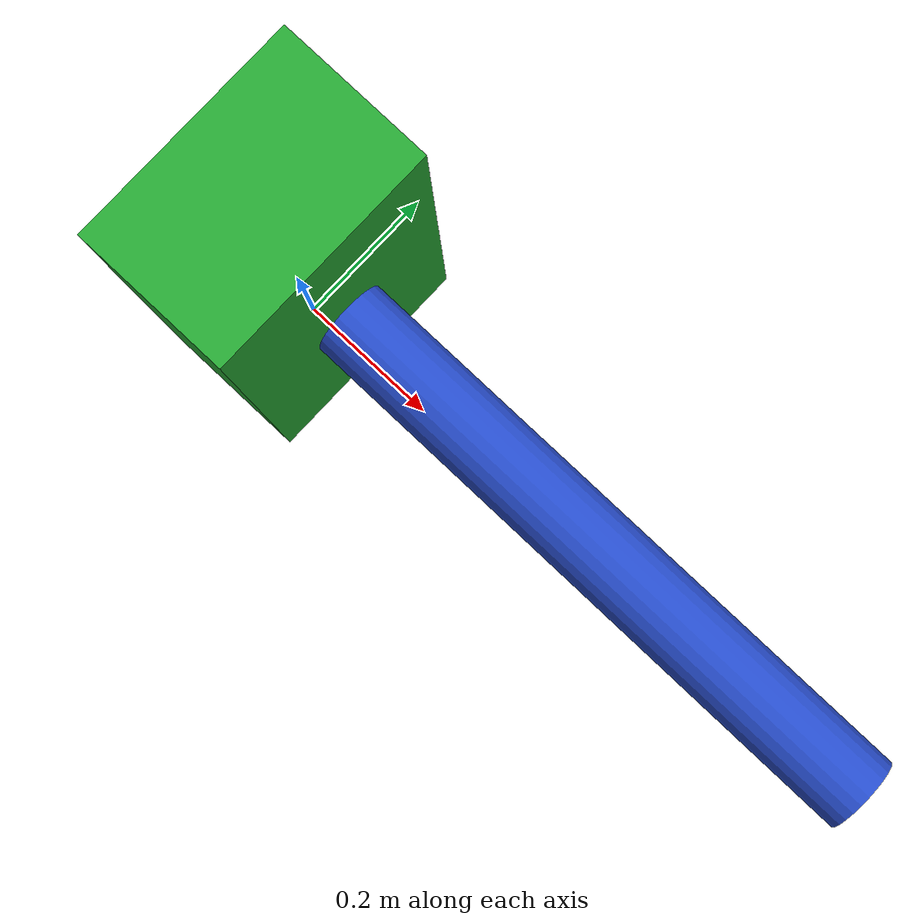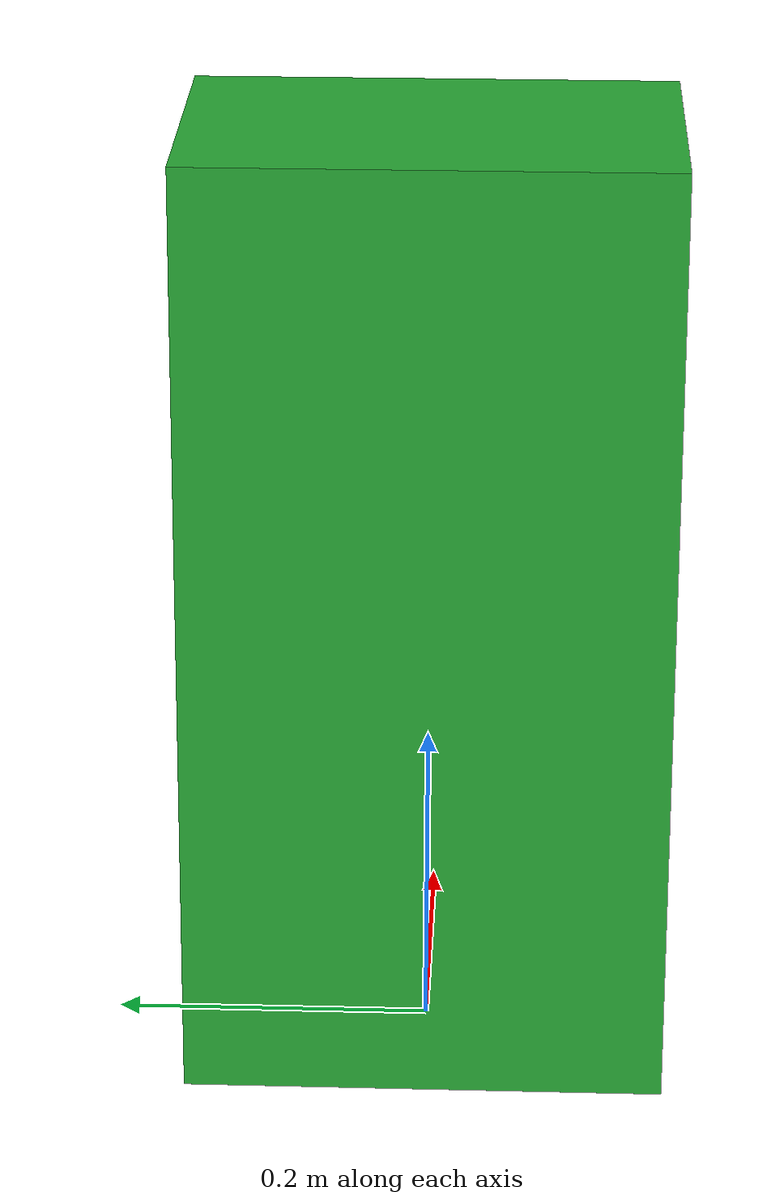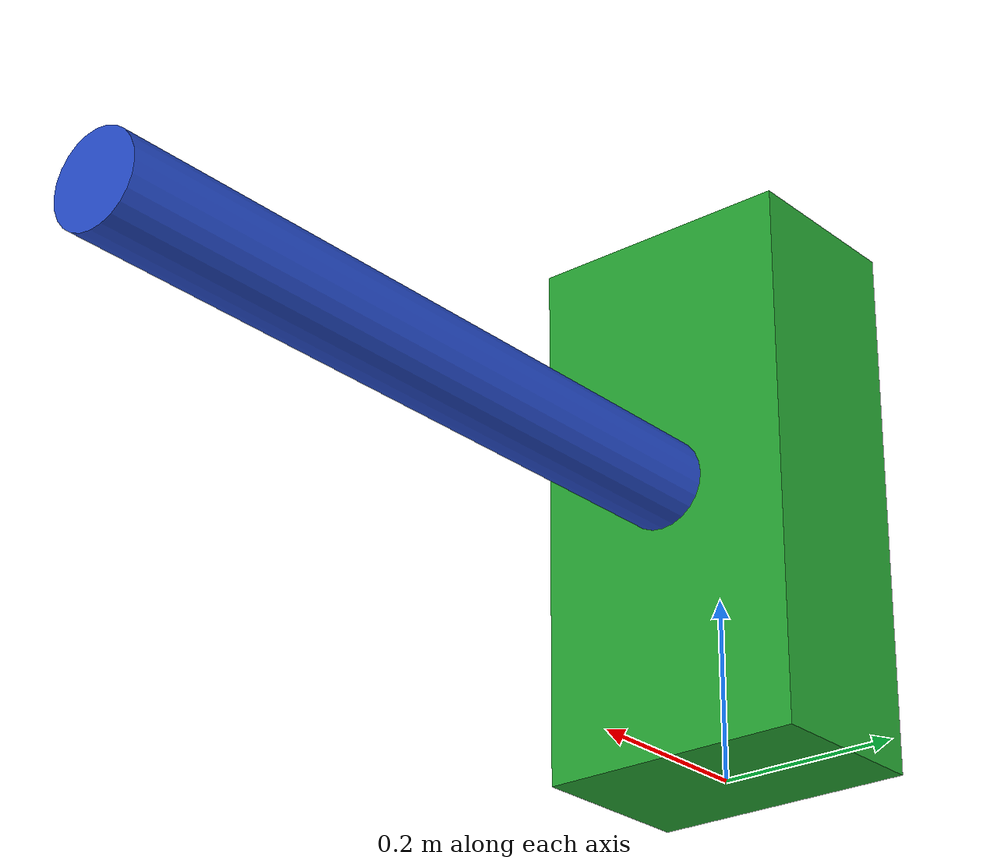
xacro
<?xml version="1.0"?>
<robot name="example" xmlns:xacro="http://www.ros.org/wiki/xacro">

    <!-- 依赖库，类似 c++ 头文件或者 python import -->
    <xacro:include filename="example_materials.xacro"/>
    <xacro:include filename="example_inertia.xacro"/>

    <!-- 定义变量 -->
    <xacro:property name="base_link_length" value="0.2"/>
    <xacro:property name="base_link_width" value="0.3"/>
    <xacro:property name="base_link_height" value="0.6"/>
    <xacro:property name="second_link_length" value="0.8"/>
    <xacro:property name="second_link_radius" value="0.05"/>

    <xacro:property name="base_link_mass" value="0.5"/>   <!-- Mass in [kg] -->
    <xacro:property name="second_link_mass" value="0.2"/> <!-- Mass in [kg] -->

    <!-- 自定义函数 -->
    <xacro:macro name="box" params="length width height">
        <box size="${length} ${width} ${height}"/>
    </xacro:macro>

    <!-- 建模部分 -->
    <link name="base_link">
        <visual>
            <origin xyz="0 0 ${base_link_height / 2.0}"  rpy="0 0 0"/>
            <geometry>
                <xacro:box length="${base_link_length}" width="${base_link_width}" height="${base_link_height}"/>
            </geometry>
            <material name="green"/>
        </visual>
        <collision>
            <origin xyz="0 0 ${base_link_height / 2.0}"  rpy="0 0 0"/>
            <geometry>
                <xacro:box length="${base_link_length}" width="${base_link_width}" height="${base_link_height}"/>
            </geometry>
        </collision>
        <xacro:box_inertia m="${base_link_mass}" l="${base_link_length}" w="${base_link_width}" h="${base_link_height}"
                        xyz="0 0 ${base_link_height / 2.0}"  rpy="0 0 0"/>
    </link>

    <link name="second_link">
        <visual>
            <origin xyz="${second_link_length / 2.0} 0 0" rpy="0 ${pi / 2.0} 0"/>
            <geometry>
                <cylinder length="${second_link_length}" radius="${second_link_radius}"/>
            </geometry>
            <material name="blue"/>
        </visual>
        <collision>
            <origin xyz="${second_link_length / 2.0} 0 0" rpy="0 ${pi / 2.0} 0"/>
            <geometry>
                <cylinder length="${second_link_length}" radius="${second_link_radius}"/>
            </geometry>
        </collision>
        <xacro:cylinder_inertia m="${second_link_mass}" r="${second_link_radius}" h="${second_link_length}"
                                xyz="${second_link_length / 2.0} 0 0" rpy="0 ${pi / 2.0} 0"/>
    </link>

    <joint name="second_link_joint" type="fixed">
        <parent link="base_link"/>
        <child link="second_link"/>
        <origin xyz="${base_link_length / 2.0} 0 ${base_link_height / 2.0}" rpy="0 0 0"/>
    </joint>

</robot>

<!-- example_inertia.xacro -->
<robot xmlns:xacro="http://www.ros.org/wiki/xacro">

    <xacro:macro name="box_inertia" params="m l w h xyz rpy">
        <inertial>
            <origin xyz="${xyz}" rpy="${rpy}"/>
            <mass value="${m}"/>
            <inertia ixx="${(m/12) * (h*h + l*l)}" ixy="0" ixz="0"
                    iyy="${(m/12) * (w*w + l*l)}" iyz="0"
                    izz="${(m/12) * (w*w + h*h)}"/>
        </inertial>
    </xacro:macro>

    <xacro:macro name="cylinder_inertia" params="m r h xyz rpy">
        <inertial>
            <origin xyz="${xyz}" rpy="${rpy}"/>
            <mass value="${m}" />
            <inertia ixx="${(m/12) * (3*r*r + h*h)}" ixy="0" ixz="0"
                    iyy="${(m/12) * (3*r*r + h*h)}" iyz="0"
                    izz="${(m/2) * (r*r)}"/>
        </inertial>
    </xacro:macro>

</robot>
